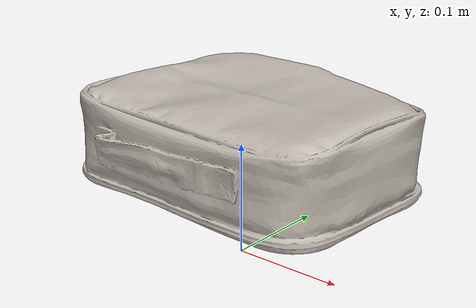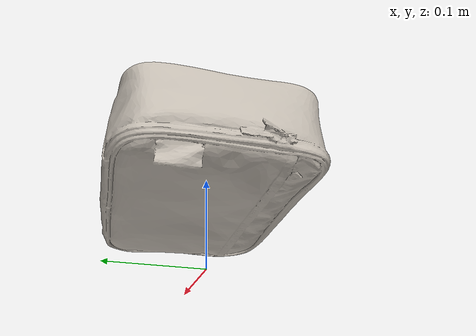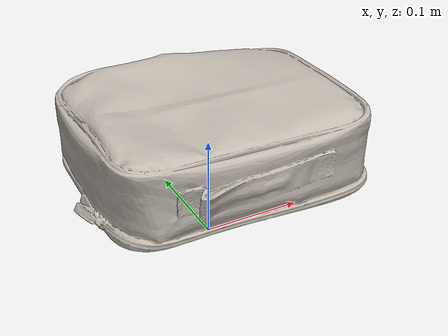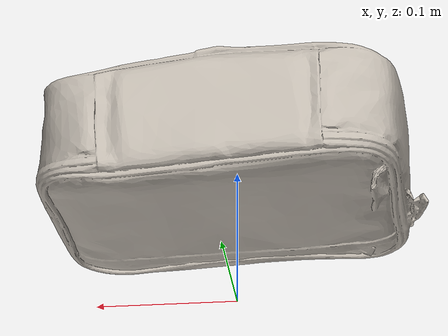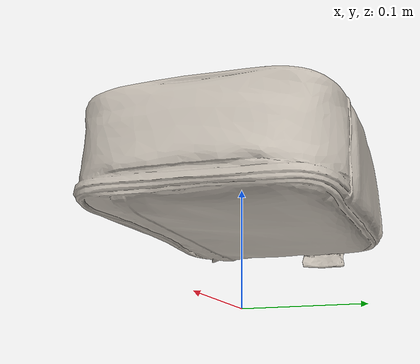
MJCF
<mujoco model="lunchbox">
  <compiler angle="radian"/>

  <asset>
    <texture name="lunchbox_tex" type="2d" file="lunchbox_texture.png"/>
    <material name="lunchbox_mat" texture="lunchbox_tex" specular="0.5" shininess="0.5"/>
    <mesh name="lunchbox_visual" file="lunchbox_visual.obj"/>
  </asset>

  <worldbody>
    <body name="lunchbox" pos="0 0 0.1">
      <freejoint name="lunchbox_joint"/>

      <!-- Collision geometry - box -->
      <geom name="lunchbox_collision"
            type="box"
            size="0.13 0.049 0.1"
            mass="0.4"
            friction="0.7 0.005 0.0001"
            contype="1"
            conaffinity="1"
            rgba="0 0 0 0"/>

      <!-- Visual mesh -->
      <geom name="lunchbox_visual"
            type="mesh"
            mesh="lunchbox_visual"
            material="lunchbox_mat"
            contype="0"
            conaffinity="0"/>
    </body>
  </worldbody>
</mujoco>
